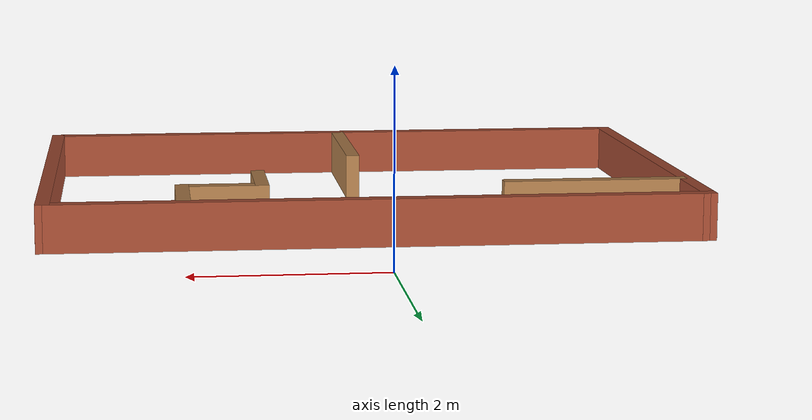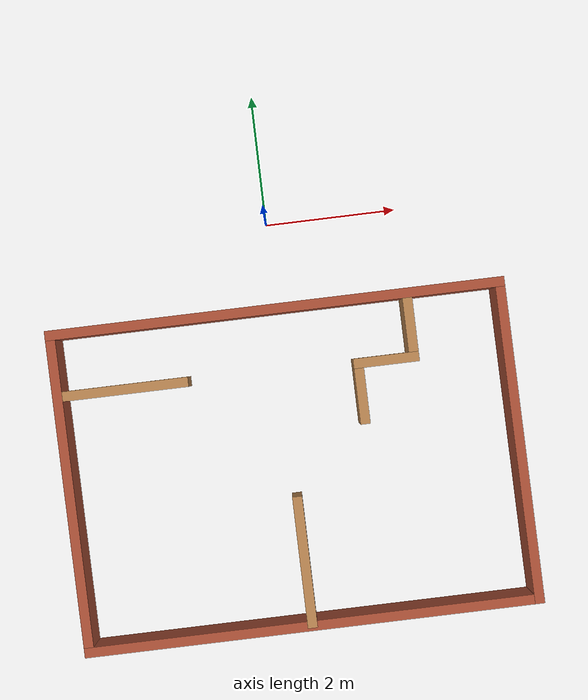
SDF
<?xml version='1.0'?>
<sdf version='1.6'>
  <model name='liuworld1'>
    <pose frame=''>-0.0115 -3.7475 0 0 -0 0</pose>
    <link name='Wall_0'>
      <collision name='Wall_0_Collision'>
        <geometry>
          <box>
            <size>7 0.15 0.5</size>
          </box>
        </geometry>
        <pose frame=''>0 0 0.25 0 -0 0</pose>
      </collision>
      <visual name='Wall_0_Visual'>
        <pose frame=''>0 0 0.25 0 -0 0</pose>
        <geometry>
          <box>
            <size>7 0.15 0.5</size>
          </box>
        </geometry>
        <material>
          <script>
            <uri>file://media/materials/scripts/gazebo.material</uri>
            <name>Gazebo/Bricks</name>
          </script>
          <ambient>1 1 1 1</ambient>
        </material>
        <meta>
          <layer>0</layer>
        </meta>
      </visual>
      <pose frame=''>-0.0135 2.4155 0 0 -0 0</pose>
    </link>
    <link name='Wall_1'>
      <collision name='Wall_1_Collision'>
        <geometry>
          <box>
            <size>4.98107 0.15 0.5</size>
          </box>
        </geometry>
        <pose frame=''>0 0 0.25 0 -0 0</pose>
      </collision>
      <visual name='Wall_1_Visual'>
        <pose frame=''>0 0 0.25 0 -0 0</pose>
        <geometry>
          <box>
            <size>4.98107 0.15 0.5</size>
          </box>
        </geometry>
        <material>
          <script>
            <uri>file://media/materials/scripts/gazebo.material</uri>
            <name>Gazebo/Bricks</name>
          </script>
          <ambient>1 1 1 1</ambient>
        </material>
        <meta>
          <layer>0</layer>
        </meta>
      </visual>
      <pose frame=''>3.425 -0 0 0 -0 -1.56521</pose>
    </link>
    <link name='Wall_10'>
      <collision name='Wall_10_Collision'>
        <geometry>
          <box>
            <size>1 0.15 0.5</size>
          </box>
        </geometry>
        <pose frame=''>0 0 0.25 0 -0 0</pose>
      </collision>
      <visual name='Wall_10_Visual'>
        <pose frame=''>0 0 0.25 0 -0 0</pose>
        <geometry>
          <box>
            <size>1 0.15 0.5</size>
          </box>
        </geometry>
        <material>
          <script>
            <uri>file://media/materials/scripts/gazebo.material</uri>
            <name>Gazebo/Wood</name>
          </script>
          <ambient>1 1 1 1</ambient>
        </material>
        <meta>
          <layer>0</layer>
        </meta>
      </visual>
      <pose frame=''>1.5705 1.4435 0 0 -0 3.14159</pose>
    </link>
    <link name='Wall_11'>
      <collision name='Wall_11_Collision'>
        <geometry>
          <box>
            <size>1 0.15 0.5</size>
          </box>
        </geometry>
        <pose frame=''>0 0 0.25 0 -0 0</pose>
      </collision>
      <visual name='Wall_11_Visual'>
        <pose frame=''>0 0 0.25 0 -0 0</pose>
        <geometry>
          <box>
            <size>1 0.15 0.5</size>
          </box>
        </geometry>
        <material>
          <script>
            <uri>file://media/materials/scripts/gazebo.material</uri>
            <name>Gazebo/Wood</name>
          </script>
          <ambient>1 1 1 1</ambient>
        </material>
        <meta>
          <layer>0</layer>
        </meta>
      </visual>
      <pose frame=''>1.1455 1.0185 0 0 -0 -1.5708</pose>
    </link>
    <link name='Wall_13'>
      <collision name='Wall_13_Collision'>
        <geometry>
          <box>
            <size>2 0.15 0.5</size>
          </box>
        </geometry>
        <pose frame=''>0 0 0.25 0 -0 0</pose>
      </collision>
      <visual name='Wall_13_Visual'>
        <pose frame=''>0 0 0.25 0 -0 0</pose>
        <geometry>
          <box>
            <size>2 0.15 0.5</size>
          </box>
        </geometry>
        <material>
          <script>
            <uri>file://media/materials/scripts/gazebo.material</uri>
            <name>Gazebo/Wood</name>
          </script>
          <ambient>1 1 1 1</ambient>
        </material>
        <meta>
          <layer>0</layer>
        </meta>
      </visual>
      <pose frame=''>-0.0145 -1.4465 0 0 -0 1.5708</pose>
    </link>
    <link name='Wall_2'>
      <collision name='Wall_2_Collision'>
        <geometry>
          <box>
            <size>7 0.15 0.5</size>
          </box>
        </geometry>
        <pose frame=''>0 0 0.25 0 -0 0</pose>
      </collision>
      <visual name='Wall_2_Visual'>
        <pose frame=''>0 0 0.25 0 -0 0</pose>
        <geometry>
          <box>
            <size>7 0.15 0.5</size>
          </box>
        </geometry>
        <material>
          <script>
            <uri>file://media/materials/scripts/gazebo.material</uri>
            <name>Gazebo/Bricks</name>
          </script>
          <ambient>1 1 1 1</ambient>
        </material>
        <meta>
          <layer>0</layer>
        </meta>
      </visual>
      <pose frame=''>0.0135 -2.4155 0 0 -0 3.14159</pose>
    </link>
    <link name='Wall_3'>
      <collision name='Wall_3_Collision'>
        <geometry>
          <box>
            <size>4.98107 0.15 0.5</size>
          </box>
        </geometry>
        <pose frame=''>0 0 0.25 0 -0 0</pose>
      </collision>
      <visual name='Wall_3_Visual'>
        <pose frame=''>0 0 0.25 0 -0 0</pose>
        <geometry>
          <box>
            <size>4.98107 0.15 0.5</size>
          </box>
        </geometry>
        <material>
          <script>
            <uri>file://media/materials/scripts/gazebo.material</uri>
            <name>Gazebo/Bricks</name>
          </script>
          <ambient>1 1 1 1</ambient>
        </material>
        <meta>
          <layer>0</layer>
        </meta>
      </visual>
      <pose frame=''>-3.425 -0 0 0 -0 1.57638</pose>
    </link>
    <link name='Wall_5'>
      <collision name='Wall_5_Collision'>
        <geometry>
          <box>
            <size>2 0.15 0.5</size>
          </box>
        </geometry>
        <pose frame=''>0 0 0.25 0 -0 0</pose>
      </collision>
      <visual name='Wall_5_Visual'>
        <pose frame=''>0 0 0.25 0 -0 0</pose>
        <geometry>
          <box>
            <size>2 0.15 0.5</size>
          </box>
        </geometry>
        <material>
          <script>
            <uri>file://media/materials/scripts/gazebo.material</uri>
            <name>Gazebo/Wood</name>
          </script>
          <ambient>1 1 1 1</ambient>
        </material>
        <meta>
          <layer>0</layer>
        </meta>
      </visual>
      <pose frame=''>-2.4415 1.4745 0 0 -0 3.14159</pose>
    </link>
    <link name='Wall_7'>
      <collision name='Wall_7_Collision'>
        <geometry>
          <box>
            <size>1 0.15 0.5</size>
          </box>
        </geometry>
        <pose frame=''>0 0 0.25 0 -0 0</pose>
      </collision>
      <visual name='Wall_7_Visual'>
        <pose frame=''>0 0 0.25 0 -0 0</pose>
        <geometry>
          <box>
            <size>1 0.15 0.5</size>
          </box>
        </geometry>
        <material>
          <script>
            <uri>file://media/materials/scripts/gazebo.material</uri>
            <name>Gazebo/Wood</name>
          </script>
          <ambient>1 1 1 1</ambient>
        </material>
        <meta>
          <layer>0</layer>
        </meta>
      </visual>
      <pose frame=''>1.9955 1.8685 0 0 -0 1.5708</pose>
    </link>
    <static>1</static>
  </model>
</sdf>
